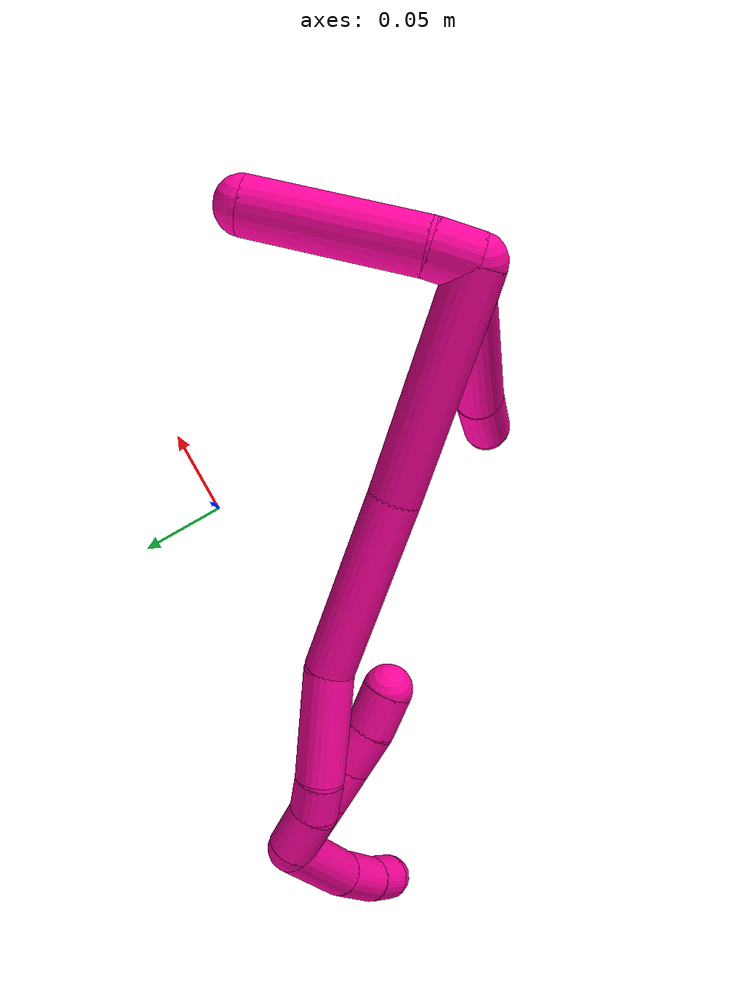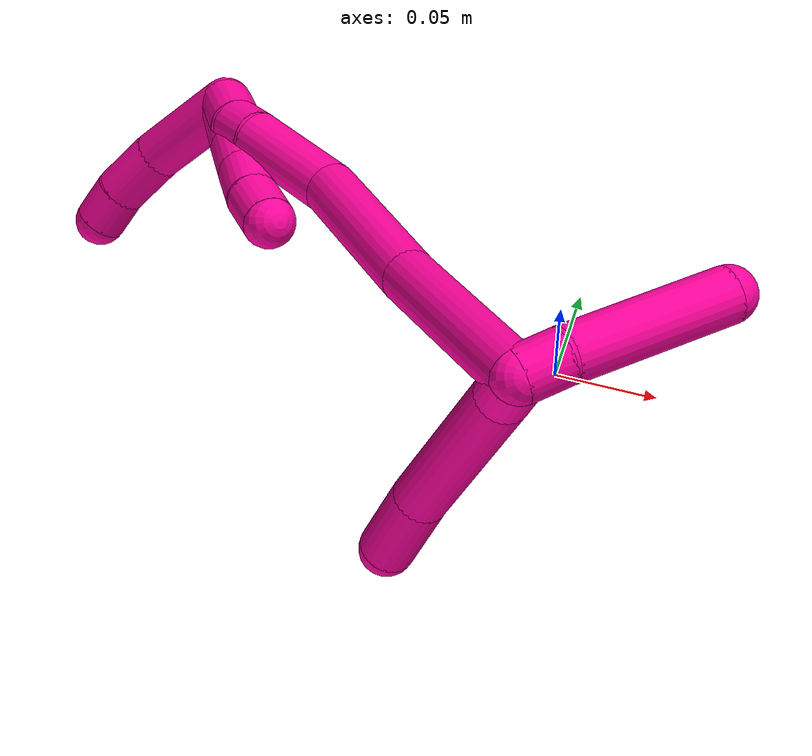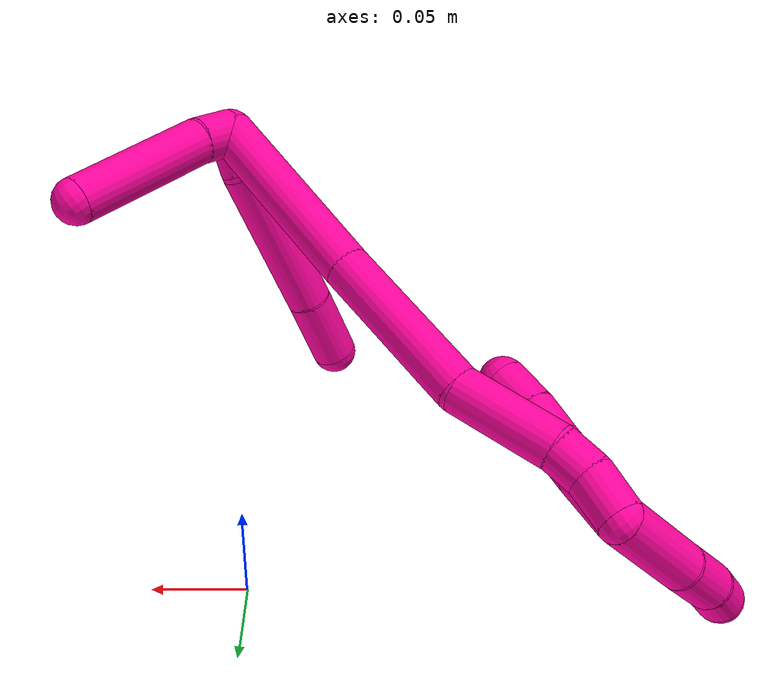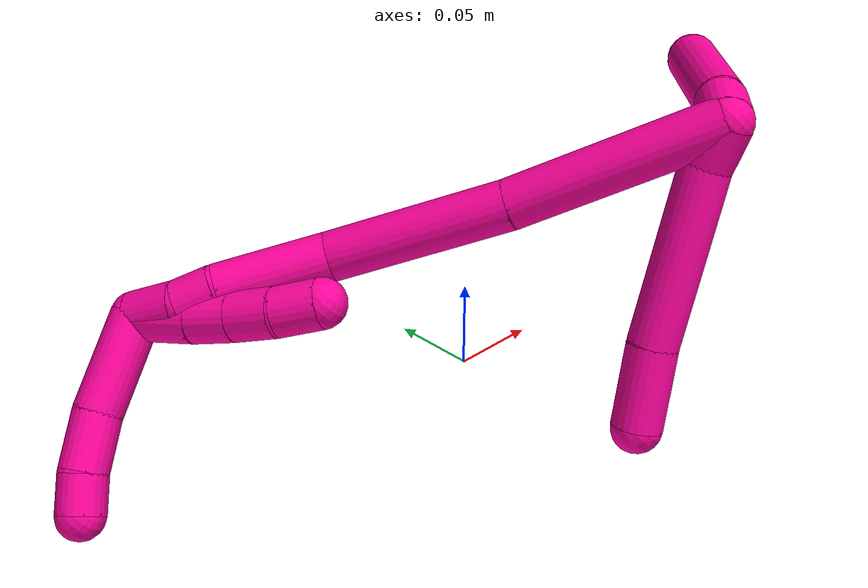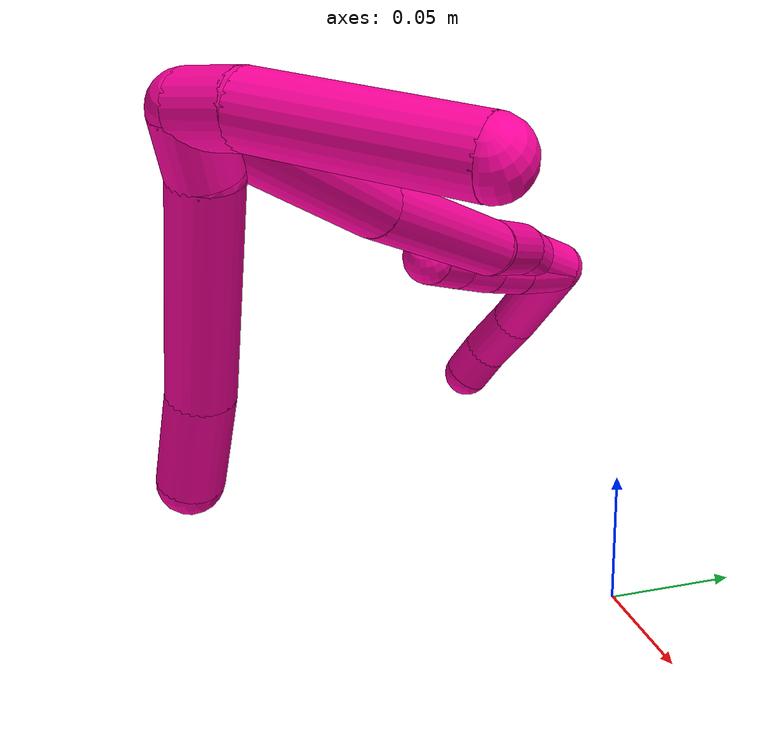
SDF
<sdf version="1.7">
 <world name="default">
  <model name="18">
   <static>0</static>
   <link name="18">
    <collision name="collision-cylinder-e_1_2_8">
     <pose>0.0042 -0.002398 -0.010138 2.9093 0.383219 2.05866</pose>
     <geometry><cylinder><radius>0.0125</radius><length>0.022466</length></cylinder></geometry>
     <surface>
      <friction><ode><mu>1.16</mu><mu2>1.16</mu2><slip1>0</slip1><slip2>0</slip2></ode></friction>
      <contact><ode><kp>1e+06</kp><kd>1</kd><max_vel>0</max_vel><min_depth>0.001</min_depth></ode></contact>
     </surface>
    </collision>
    <visual name="visual-cylinder-e_1_2_8">
     <pose>0.0042 -0.002398 -0.010138 2.9093 0.383219 2.05866</pose>
     <geometry><cylinder><radius>0.0125</radius><length>0.022466</length></cylinder></geometry>
     <material><ambient>1 0.007843 0.615686 1</ambient></material>
    </visual>
    <collision name="collision-cylinder-e_2_8_9">
     <pose>0.020227 -0.023992 -0.057504 2.66552 0.275209 1.03724</pose>
     <geometry><cylinder><radius>0.0125</radius><length>0.087046</length></cylinder></geometry>
     <surface>
      <friction><ode><mu>1.16</mu><mu2>1.16</mu2><slip1>0</slip1><slip2>0</slip2></ode></friction>
      <contact><ode><kp>1e+06</kp><kd>1</kd><max_vel>0</max_vel><min_depth>0.001</min_depth></ode></contact>
     </surface>
    </collision>
    <visual name="visual-cylinder-e_2_8_9">
     <pose>0.020227 -0.023992 -0.057504 2.66552 0.275209 1.03724</pose>
     <geometry><cylinder><radius>0.0125</radius><length>0.087046</length></cylinder></geometry>
     <material><ambient>1 0.007843 0.615686 1</ambient></material>
    </visual>
    <collision name="collision-cylinder-e_3_9_6">
     <pose>0.038084 -0.053543 -0.111049 2.57611 0.302431 0.966105</pose>
     <geometry><cylinder><radius>0.0125</radius><length>0.040489</length></cylinder></geometry>
     <surface>
      <friction><ode><mu>1.16</mu><mu2>1.16</mu2><slip1>0</slip1><slip2>0</slip2></ode></friction>
      <contact><ode><kp>1e+06</kp><kd>1</kd><max_vel>0</max_vel><min_depth>0.001</min_depth></ode></contact>
     </surface>
    </collision>
    <visual name="visual-cylinder-e_3_9_6">
     <pose>0.038084 -0.053543 -0.111049 2.57611 0.302431 0.966105</pose>
     <geometry><cylinder><radius>0.0125</radius><length>0.040489</length></cylinder></geometry>
     <material><ambient>1 0.007843 0.615686 1</ambient></material>
    </visual>
    <collision name="collision-cylinder-e_1_2_10">
     <pose>0.006582 0.008143 0.002115 -1.31662 0.66388 -0.521057</pose>
     <geometry><cylinder><radius>0.0125</radius><length>0.021363</length></cylinder></geometry>
     <surface>
      <friction><ode><mu>1.16</mu><mu2>1.16</mu2><slip1>0</slip1><slip2>0</slip2></ode></friction>
      <contact><ode><kp>1e+06</kp><kd>1</kd><max_vel>0</max_vel><min_depth>0.001</min_depth></ode></contact>
     </surface>
    </collision>
    <visual name="visual-cylinder-e_1_2_10">
     <pose>0.006582 0.008143 0.002115 -1.31662 0.66388 -0.521057</pose>
     <geometry><cylinder><radius>0.0125</radius><length>0.021363</length></cylinder></geometry>
     <material><ambient>1 0.007843 0.615686 1</ambient></material>
    </visual>
    <collision name="collision-cylinder-e_2_10_5">
     <pose>0.040337 0.044608 0.006552 -1.48901 0.763013 -0.7081</pose>
     <geometry><cylinder><radius>0.0125</radius><length>0.078637</length></cylinder></geometry>
     <surface>
      <friction><ode><mu>1.16</mu><mu2>1.16</mu2><slip1>0</slip1><slip2>0</slip2></ode></friction>
      <contact><ode><kp>1e+06</kp><kd>1</kd><max_vel>0</max_vel><min_depth>0.001</min_depth></ode></contact>
     </surface>
    </collision>
    <visual name="visual-cylinder-e_2_10_5">
     <pose>0.040337 0.044608 0.006552 -1.48901 0.763013 -0.7081</pose>
     <geometry><cylinder><radius>0.0125</radius><length>0.078637</length></cylinder></geometry>
     <material><ambient>1 0.007843 0.615686 1</ambient></material>
    </visual>
    <collision name="collision-cylinder-e_1_2_11">
     <pose>-0.007783 0.018856 -0.048845 -2.77318 -0.147573 0.755385</pose>
     <geometry><cylinder><radius>0.0125</radius><length>0.105867</length></cylinder></geometry>
     <surface>
      <friction><ode><mu>1.16</mu><mu2>1.16</mu2><slip1>0</slip1><slip2>0</slip2></ode></friction>
      <contact><ode><kp>1e+06</kp><kd>1</kd><max_vel>0</max_vel><min_depth>0.001</min_depth></ode></contact>
     </surface>
    </collision>
    <visual name="visual-cylinder-e_1_2_11">
     <pose>-0.007783 0.018856 -0.048845 -2.77318 -0.147573 0.755385</pose>
     <geometry><cylinder><radius>0.0125</radius><length>0.105867</length></cylinder></geometry>
     <material><ambient>1 0.007843 0.615686 1</ambient></material>
    </visual>
    <collision name="collision-cylinder-e_2_11_12">
     <pose>-0.024059 0.056686 -0.138358 -2.70506 -0.187038 0.800126</pose>
     <geometry><cylinder><radius>0.0125</radius><length>0.091345</length></cylinder></geometry>
     <surface>
      <friction><ode><mu>1.16</mu><mu2>1.16</mu2><slip1>0</slip1><slip2>0</slip2></ode></friction>
      <contact><ode><kp>1e+06</kp><kd>1</kd><max_vel>0</max_vel><min_depth>0.001</min_depth></ode></contact>
     </surface>
    </collision>
    <visual name="visual-cylinder-e_2_11_12">
     <pose>-0.024059 0.056686 -0.138358 -2.70506 -0.187038 0.800126</pose>
     <geometry><cylinder><radius>0.0125</radius><length>0.091345</length></cylinder></geometry>
     <material><ambient>1 0.007843 0.615686 1</ambient></material>
    </visual>
    <collision name="collision-cylinder-e_3_12_13">
     <pose>-0.044948 0.083693 -0.203292 -2.82191 -0.451518 1.91755</pose>
     <geometry><cylinder><radius>0.0125</radius><length>0.056817</length></cylinder></geometry>
     <surface>
      <friction><ode><mu>1.16</mu><mu2>1.16</mu2><slip1>0</slip1><slip2>0</slip2></ode></friction>
      <contact><ode><kp>1e+06</kp><kd>1</kd><max_vel>0</max_vel><min_depth>0.001</min_depth></ode></contact>
     </surface>
    </collision>
    <visual name="visual-cylinder-e_3_12_13">
     <pose>-0.044948 0.083693 -0.203292 -2.82191 -0.451518 1.91755</pose>
     <geometry><cylinder><radius>0.0125</radius><length>0.056817</length></cylinder></geometry>
     <material><ambient>1 0.007843 0.615686 1</ambient></material>
    </visual>
    <collision name="collision-cylinder-e_4_13_14">
     <pose>-0.059993 0.094365 -0.236866 -2.86536 -0.267349 1.53772</pose>
     <geometry><cylinder><radius>0.0125</radius><length>0.02006</length></cylinder></geometry>
     <surface>
      <friction><ode><mu>1.16</mu><mu2>1.16</mu2><slip1>0</slip1><slip2>0</slip2></ode></friction>
      <contact><ode><kp>1e+06</kp><kd>1</kd><max_vel>0</max_vel><min_depth>0.001</min_depth></ode></contact>
     </surface>
    </collision>
    <visual name="visual-cylinder-e_4_13_14">
     <pose>-0.059993 0.094365 -0.236866 -2.86536 -0.267349 1.53772</pose>
     <geometry><cylinder><radius>0.0125</radius><length>0.02006</length></cylinder></geometry>
     <material><ambient>1 0.007843 0.615686 1</ambient></material>
    </visual>
    <collision name="collision-cylinder-e_5_14_1">
     <pose>-0.063466 0.103386 -0.257416 -2.62529 -0.063557 0.239634</pose>
     <geometry><cylinder><radius>0.0125</radius><length>0.02591</length></cylinder></geometry>
     <surface>
      <friction><ode><mu>1.16</mu><mu2>1.16</mu2><slip1>0</slip1><slip2>0</slip2></ode></friction>
      <contact><ode><kp>1e+06</kp><kd>1</kd><max_vel>0</max_vel><min_depth>0.001</min_depth></ode></contact>
     </surface>
    </collision>
    <visual name="visual-cylinder-e_5_14_1">
     <pose>-0.063466 0.103386 -0.257416 -2.62529 -0.063557 0.239634</pose>
     <geometry><cylinder><radius>0.0125</radius><length>0.02591</length></cylinder></geometry>
     <material><ambient>1 0.007843 0.615686 1</ambient></material>
    </visual>
    <collision name="collision-cylinder-e_1_1_15">
     <pose>-0.066941 0.095305 -0.289234 2.52887 -0.105089 -0.329515</pose>
     <geometry><cylinder><radius>0.0125</radius><length>0.050578</length></cylinder></geometry>
     <surface>
      <friction><ode><mu>1.16</mu><mu2>1.16</mu2><slip1>0</slip1><slip2>0</slip2></ode></friction>
      <contact><ode><kp>1e+06</kp><kd>1</kd><max_vel>0</max_vel><min_depth>0.001</min_depth></ode></contact>
     </surface>
    </collision>
    <visual name="visual-cylinder-e_1_1_15">
     <pose>-0.066941 0.095305 -0.289234 2.52887 -0.105089 -0.329515</pose>
     <geometry><cylinder><radius>0.0125</radius><length>0.050578</length></cylinder></geometry>
     <material><ambient>1 0.007843 0.615686 1</ambient></material>
    </visual>
    <collision name="collision-cylinder-e_2_15_16">
     <pose>-0.070534 0.070724 -0.320312 2.37491 -0.064401 -0.159403</pose>
     <geometry><cylinder><radius>0.0125</radius><length>0.029227</length></cylinder></geometry>
     <surface>
      <friction><ode><mu>1.16</mu><mu2>1.16</mu2><slip1>0</slip1><slip2>0</slip2></ode></friction>
      <contact><ode><kp>1e+06</kp><kd>1</kd><max_vel>0</max_vel><min_depth>0.001</min_depth></ode></contact>
     </surface>
    </collision>
    <visual name="visual-cylinder-e_2_15_16">
     <pose>-0.070534 0.070724 -0.320312 2.37491 -0.064401 -0.159403</pose>
     <geometry><cylinder><radius>0.0125</radius><length>0.029227</length></cylinder></geometry>
     <material><ambient>1 0.007843 0.615686 1</ambient></material>
    </visual>
    <collision name="collision-cylinder-e_3_16_4">
     <pose>-0.070551 0.053019 -0.337413 2.28657 0.09167 0.200666</pose>
     <geometry><cylinder><radius>0.0125</radius><length>0.020194</length></cylinder></geometry>
     <surface>
      <friction><ode><mu>1.16</mu><mu2>1.16</mu2><slip1>0</slip1><slip2>0</slip2></ode></friction>
      <contact><ode><kp>1e+06</kp><kd>1</kd><max_vel>0</max_vel><min_depth>0.001</min_depth></ode></contact>
     </surface>
    </collision>
    <visual name="visual-cylinder-e_3_16_4">
     <pose>-0.070551 0.053019 -0.337413 2.28657 0.09167 0.200666</pose>
     <geometry><cylinder><radius>0.0125</radius><length>0.020194</length></cylinder></geometry>
     <material><ambient>1 0.007843 0.615686 1</ambient></material>
    </visual>
    <collision name="collision-cylinder-e_1_1_17">
     <pose>-0.06131 0.098977 -0.256984 0.74607 0.185183 0.072649</pose>
     <geometry><cylinder><radius>0.0125</radius><length>0.032351</length></cylinder></geometry>
     <surface>
      <friction><ode><mu>1.16</mu><mu2>1.16</mu2><slip1>0</slip1><slip2>0</slip2></ode></friction>
      <contact><ode><kp>1e+06</kp><kd>1</kd><max_vel>0</max_vel><min_depth>0.001</min_depth></ode></contact>
     </surface>
    </collision>
    <visual name="visual-cylinder-e_1_1_17">
     <pose>-0.06131 0.098977 -0.256984 0.74607 0.185183 0.072649</pose>
     <geometry><cylinder><radius>0.0125</radius><length>0.032351</length></cylinder></geometry>
     <material><ambient>1 0.007843 0.615686 1</ambient></material>
    </visual>
    <collision name="collision-cylinder-e_2_17_18">
     <pose>-0.056753 0.08139 -0.236781 0.672852 0.143818 0.050372</pose>
     <geometry><cylinder><radius>0.0125</radius><length>0.022036</length></cylinder></geometry>
     <surface>
      <friction><ode><mu>1.16</mu><mu2>1.16</mu2><slip1>0</slip1><slip2>0</slip2></ode></friction>
      <contact><ode><kp>1e+06</kp><kd>1</kd><max_vel>0</max_vel><min_depth>0.001</min_depth></ode></contact>
     </surface>
    </collision>
    <visual name="visual-cylinder-e_2_17_18">
     <pose>-0.056753 0.08139 -0.236781 0.672852 0.143818 0.050372</pose>
     <geometry><cylinder><radius>0.0125</radius><length>0.022036</length></cylinder></geometry>
     <material><ambient>1 0.007843 0.615686 1</ambient></material>
    </visual>
    <collision name="collision-cylinder-e_3_18_19">
     <pose>-0.053915 0.067987 -0.219151 0.627833 0.111449 0.036216</pose>
     <geometry><cylinder><radius>0.0125</radius><length>0.022636</length></cylinder></geometry>
     <surface>
      <friction><ode><mu>1.16</mu><mu2>1.16</mu2><slip1>0</slip1><slip2>0</slip2></ode></friction>
      <contact><ode><kp>1e+06</kp><kd>1</kd><max_vel>0</max_vel><min_depth>0.001</min_depth></ode></contact>
     </surface>
    </collision>
    <visual name="visual-cylinder-e_3_18_19">
     <pose>-0.053915 0.067987 -0.219151 0.627833 0.111449 0.036216</pose>
     <geometry><cylinder><radius>0.0125</radius><length>0.022636</length></cylinder></geometry>
     <material><ambient>1 0.007843 0.615686 1</ambient></material>
    </visual>
    <collision name="collision-cylinder-e_4_19_3">
     <pose>-0.050269 0.055847 -0.200266 0.514757 0.209295 0.055278</pose>
     <geometry><cylinder><radius>0.0125</radius><length>0.022978</length></cylinder></geometry>
     <surface>
      <friction><ode><mu>1.16</mu><mu2>1.16</mu2><slip1>0</slip1><slip2>0</slip2></ode></friction>
      <contact><ode><kp>1e+06</kp><kd>1</kd><max_vel>0</max_vel><min_depth>0.001</min_depth></ode></contact>
     </surface>
    </collision>
    <visual name="visual-cylinder-e_4_19_3">
     <pose>-0.050269 0.055847 -0.200266 0.514757 0.209295 0.055278</pose>
     <geometry><cylinder><radius>0.0125</radius><length>0.022978</length></cylinder></geometry>
     <material><ambient>1 0.007843 0.615686 1</ambient></material>
    </visual>
    <collision name="collision-sphere-3">
     <pose>-0.047882 0.050315 -0.190484 0 -0 0</pose>
     <geometry><sphere><radius>0.0125</radius></sphere></geometry>
     <surface>
      <friction><ode><mu>1.16</mu><mu2>1.16</mu2><slip1>0</slip1><slip2>0</slip2></ode></friction>
      <contact><ode><kp>1e+06</kp><kd>1</kd><max_vel>0</max_vel><min_depth>0.001</min_depth></ode></contact>
     </surface>
    </collision>
    <visual name="visual-sphere-3">
     <pose>-0.047882 0.050315 -0.190484 0 -0 0</pose>
     <geometry><sphere><radius>0.0125</radius></sphere></geometry>
     <material><ambient>1 0.007843 0.615686 1</ambient></material>
    </visual>
    <collision name="collision-sphere-19">
     <pose>-0.052656 0.06138 -0.210048 0 -0 0</pose>
     <geometry><sphere><radius>0.0125</radius></sphere></geometry>
     <surface>
      <friction><ode><mu>1.16</mu><mu2>1.16</mu2><slip1>0</slip1><slip2>0</slip2></ode></friction>
      <contact><ode><kp>1e+06</kp><kd>1</kd><max_vel>0</max_vel><min_depth>0.001</min_depth></ode></contact>
     </surface>
    </collision>
    <visual name="visual-sphere-19">
     <pose>-0.052656 0.06138 -0.210048 0 -0 0</pose>
     <geometry><sphere><radius>0.0125</radius></sphere></geometry>
     <material><ambient>1 0.007843 0.615686 1</ambient></material>
    </visual>
    <collision name="collision-sphere-5">
     <pose>0.06751 0.072931 0.008874 0 -0 0</pose>
     <geometry><sphere><radius>0.0125</radius></sphere></geometry>
     <surface>
      <friction><ode><mu>1.16</mu><mu2>1.16</mu2><slip1>0</slip1><slip2>0</slip2></ode></friction>
      <contact><ode><kp>1e+06</kp><kd>1</kd><max_vel>0</max_vel><min_depth>0.001</min_depth></ode></contact>
     </surface>
    </collision>
    <visual name="visual-sphere-5">
     <pose>0.06751 0.072931 0.008874 0 -0 0</pose>
     <geometry><sphere><radius>0.0125</radius></sphere></geometry>
     <material><ambient>1 0.007843 0.615686 1</ambient></material>
    </visual>
    <collision name="collision-sphere-10">
     <pose>0.013164 0.016285 0.004231 0 -0 0</pose>
     <geometry><sphere><radius>0.0125</radius></sphere></geometry>
     <surface>
      <friction><ode><mu>1.16</mu><mu2>1.16</mu2><slip1>0</slip1><slip2>0</slip2></ode></friction>
      <contact><ode><kp>1e+06</kp><kd>1</kd><max_vel>0</max_vel><min_depth>0.001</min_depth></ode></contact>
     </surface>
    </collision>
    <visual name="visual-sphere-10">
     <pose>0.013164 0.016285 0.004231 0 -0 0</pose>
     <geometry><sphere><radius>0.0125</radius></sphere></geometry>
     <material><ambient>1 0.007843 0.615686 1</ambient></material>
    </visual>
    <collision name="collision-sphere-6">
     <pose>0.044114 -0.063898 -0.127366 0 -0 0</pose>
     <geometry><sphere><radius>0.0125</radius></sphere></geometry>
     <surface>
      <friction><ode><mu>1.16</mu><mu2>1.16</mu2><slip1>0</slip1><slip2>0</slip2></ode></friction>
      <contact><ode><kp>1e+06</kp><kd>1</kd><max_vel>0</max_vel><min_depth>0.001</min_depth></ode></contact>
     </surface>
    </collision>
    <visual name="visual-sphere-6">
     <pose>0.044114 -0.063898 -0.127366 0 -0 0</pose>
     <geometry><sphere><radius>0.0125</radius></sphere></geometry>
     <material><ambient>1 0.007843 0.615686 1</ambient></material>
    </visual>
    <collision name="collision-sphere-9">
     <pose>0.032055 -0.043188 -0.094731 0 -0 0</pose>
     <geometry><sphere><radius>0.0125</radius></sphere></geometry>
     <surface>
      <friction><ode><mu>1.16</mu><mu2>1.16</mu2><slip1>0</slip1><slip2>0</slip2></ode></friction>
      <contact><ode><kp>1e+06</kp><kd>1</kd><max_vel>0</max_vel><min_depth>0.001</min_depth></ode></contact>
     </surface>
    </collision>
    <visual name="visual-sphere-9">
     <pose>0.032055 -0.043188 -0.094731 0 -0 0</pose>
     <geometry><sphere><radius>0.0125</radius></sphere></geometry>
     <material><ambient>1 0.007843 0.615686 1</ambient></material>
    </visual>
    <collision name="collision-sphere-2">
     <geometry><sphere><radius>0.0125</radius></sphere></geometry>
     <surface>
      <friction><ode><mu>1.16</mu><mu2>1.16</mu2><slip1>0</slip1><slip2>0</slip2></ode></friction>
      <contact><ode><kp>1e+06</kp><kd>1</kd><max_vel>0</max_vel><min_depth>0.001</min_depth></ode></contact>
     </surface>
    </collision>
    <visual name="visual-sphere-2">
     <geometry><sphere><radius>0.0125</radius></sphere></geometry>
     <material><ambient>1 0.007843 0.615686 1</ambient></material>
    </visual>
    <collision name="collision-sphere-8">
     <pose>0.0084 -0.004797 -0.020277 0 -0 0</pose>
     <geometry><sphere><radius>0.0125</radius></sphere></geometry>
     <surface>
      <friction><ode><mu>1.16</mu><mu2>1.16</mu2><slip1>0</slip1><slip2>0</slip2></ode></friction>
      <contact><ode><kp>1e+06</kp><kd>1</kd><max_vel>0</max_vel><min_depth>0.001</min_depth></ode></contact>
     </surface>
    </collision>
    <visual name="visual-sphere-8">
     <pose>0.0084 -0.004797 -0.020277 0 -0 0</pose>
     <geometry><sphere><radius>0.0125</radius></sphere></geometry>
     <material><ambient>1 0.007843 0.615686 1</ambient></material>
    </visual>
    <collision name="collision-sphere-11">
     <pose>-0.015567 0.037713 -0.09769 0 -0 0</pose>
     <geometry><sphere><radius>0.0125</radius></sphere></geometry>
     <surface>
      <friction><ode><mu>1.16</mu><mu2>1.16</mu2><slip1>0</slip1><slip2>0</slip2></ode></friction>
      <contact><ode><kp>1e+06</kp><kd>1</kd><max_vel>0</max_vel><min_depth>0.001</min_depth></ode></contact>
     </surface>
    </collision>
    <visual name="visual-sphere-11">
     <pose>-0.015567 0.037713 -0.09769 0 -0 0</pose>
     <geometry><sphere><radius>0.0125</radius></sphere></geometry>
     <material><ambient>1 0.007843 0.615686 1</ambient></material>
    </visual>
    <collision name="collision-sphere-12">
     <pose>-0.032552 0.07566 -0.179026 0 -0 0</pose>
     <geometry><sphere><radius>0.0125</radius></sphere></geometry>
     <surface>
      <friction><ode><mu>1.16</mu><mu2>1.16</mu2><slip1>0</slip1><slip2>0</slip2></ode></friction>
      <contact><ode><kp>1e+06</kp><kd>1</kd><max_vel>0</max_vel><min_depth>0.001</min_depth></ode></contact>
     </surface>
    </collision>
    <visual name="visual-sphere-12">
     <pose>-0.032552 0.07566 -0.179026 0 -0 0</pose>
     <geometry><sphere><radius>0.0125</radius></sphere></geometry>
     <material><ambient>1 0.007843 0.615686 1</ambient></material>
    </visual>
    <collision name="collision-sphere-13">
     <pose>-0.057343 0.091726 -0.227559 0 -0 0</pose>
     <geometry><sphere><radius>0.0125</radius></sphere></geometry>
     <surface>
      <friction><ode><mu>1.16</mu><mu2>1.16</mu2><slip1>0</slip1><slip2>0</slip2></ode></friction>
      <contact><ode><kp>1e+06</kp><kd>1</kd><max_vel>0</max_vel><min_depth>0.001</min_depth></ode></contact>
     </surface>
    </collision>
    <visual name="visual-sphere-13">
     <pose>-0.057343 0.091726 -0.227559 0 -0 0</pose>
     <geometry><sphere><radius>0.0125</radius></sphere></geometry>
     <material><ambient>1 0.007843 0.615686 1</ambient></material>
    </visual>
    <collision name="collision-sphere-14">
     <pose>-0.062643 0.097003 -0.246173 0 -0 0</pose>
     <geometry><sphere><radius>0.0125</radius></sphere></geometry>
     <surface>
      <friction><ode><mu>1.16</mu><mu2>1.16</mu2><slip1>0</slip1><slip2>0</slip2></ode></friction>
      <contact><ode><kp>1e+06</kp><kd>1</kd><max_vel>0</max_vel><min_depth>0.001</min_depth></ode></contact>
     </surface>
    </collision>
    <visual name="visual-sphere-14">
     <pose>-0.062643 0.097003 -0.246173 0 -0 0</pose>
     <geometry><sphere><radius>0.0125</radius></sphere></geometry>
     <material><ambient>1 0.007843 0.615686 1</ambient></material>
    </visual>
    <collision name="collision-sphere-1">
     <pose>-0.064288 0.109768 -0.26866 0 -0 0</pose>
     <geometry><sphere><radius>0.0125</radius></sphere></geometry>
     <surface>
      <friction><ode><mu>1.16</mu><mu2>1.16</mu2><slip1>0</slip1><slip2>0</slip2></ode></friction>
      <contact><ode><kp>1e+06</kp><kd>1</kd><max_vel>0</max_vel><min_depth>0.001</min_depth></ode></contact>
     </surface>
    </collision>
    <visual name="visual-sphere-1">
     <pose>-0.064288 0.109768 -0.26866 0 -0 0</pose>
     <geometry><sphere><radius>0.0125</radius></sphere></geometry>
     <material><ambient>1 0.007843 0.615686 1</ambient></material>
    </visual>
    <collision name="collision-sphere-18">
     <pose>-0.055174 0.074594 -0.228254 0 -0 0</pose>
     <geometry><sphere><radius>0.0125</radius></sphere></geometry>
     <surface>
      <friction><ode><mu>1.16</mu><mu2>1.16</mu2><slip1>0</slip1><slip2>0</slip2></ode></friction>
      <contact><ode><kp>1e+06</kp><kd>1</kd><max_vel>0</max_vel><min_depth>0.001</min_depth></ode></contact>
     </surface>
    </collision>
    <visual name="visual-sphere-18">
     <pose>-0.055174 0.074594 -0.228254 0 -0 0</pose>
     <geometry><sphere><radius>0.0125</radius></sphere></geometry>
     <material><ambient>1 0.007843 0.615686 1</ambient></material>
    </visual>
    <collision name="collision-sphere-15">
     <pose>-0.069594 0.080841 -0.309809 0 -0 0</pose>
     <geometry><sphere><radius>0.0125</radius></sphere></geometry>
     <surface>
      <friction><ode><mu>1.16</mu><mu2>1.16</mu2><slip1>0</slip1><slip2>0</slip2></ode></friction>
      <contact><ode><kp>1e+06</kp><kd>1</kd><max_vel>0</max_vel><min_depth>0.001</min_depth></ode></contact>
     </surface>
    </collision>
    <visual name="visual-sphere-15">
     <pose>-0.069594 0.080841 -0.309809 0 -0 0</pose>
     <geometry><sphere><radius>0.0125</radius></sphere></geometry>
     <material><ambient>1 0.007843 0.615686 1</ambient></material>
    </visual>
    <collision name="collision-sphere-16">
     <pose>-0.071475 0.060607 -0.330815 0 -0 0</pose>
     <geometry><sphere><radius>0.0125</radius></sphere></geometry>
     <surface>
      <friction><ode><mu>1.16</mu><mu2>1.16</mu2><slip1>0</slip1><slip2>0</slip2></ode></friction>
      <contact><ode><kp>1e+06</kp><kd>1</kd><max_vel>0</max_vel><min_depth>0.001</min_depth></ode></contact>
     </surface>
    </collision>
    <visual name="visual-sphere-16">
     <pose>-0.071475 0.060607 -0.330815 0 -0 0</pose>
     <geometry><sphere><radius>0.0125</radius></sphere></geometry>
     <material><ambient>1 0.007843 0.615686 1</ambient></material>
    </visual>
    <collision name="collision-sphere-4">
     <pose>-0.069626 0.045432 -0.344011 0 -0 0</pose>
     <geometry><sphere><radius>0.0125</radius></sphere></geometry>
     <surface>
      <friction><ode><mu>1.16</mu><mu2>1.16</mu2><slip1>0</slip1><slip2>0</slip2></ode></friction>
      <contact><ode><kp>1e+06</kp><kd>1</kd><max_vel>0</max_vel><min_depth>0.001</min_depth></ode></contact>
     </surface>
    </collision>
    <visual name="visual-sphere-4">
     <pose>-0.069626 0.045432 -0.344011 0 -0 0</pose>
     <geometry><sphere><radius>0.0125</radius></sphere></geometry>
     <material><ambient>1 0.007843 0.615686 1</ambient></material>
    </visual>
    <collision name="collision-sphere-17">
     <pose>-0.058332 0.088185 -0.245309 0 -0 0</pose>
     <geometry><sphere><radius>0.0125</radius></sphere></geometry>
     <surface>
      <friction><ode><mu>1.16</mu><mu2>1.16</mu2><slip1>0</slip1><slip2>0</slip2></ode></friction>
      <contact><ode><kp>1e+06</kp><kd>1</kd><max_vel>0</max_vel><min_depth>0.001</min_depth></ode></contact>
     </surface>
    </collision>
    <visual name="visual-sphere-17">
     <pose>-0.058332 0.088185 -0.245309 0 -0 0</pose>
     <geometry><sphere><radius>0.0125</radius></sphere></geometry>
     <material><ambient>1 0.007843 0.615686 1</ambient></material>
    </visual>
    <inertial>
     <pose>-0.018927 0.042198 -0.138465 0 -0 0</pose>
     <mass>0.75</mass>
     <inertia>
      <ixx>0.000369</ixx>
      <ixy>0</ixy>
      <ixz>0</ixz>
      <iyy>6.1e-05</iyy>
      <iyz>0</iyz>
      <izz>-0.000102</izz>
     </inertia>
    </inertial>
   </link>
   <pose>0.012288 -0.14987 0.192785 0.49423 0.656688 0.139681</pose>
  </model>
 </world>
</sdf>
